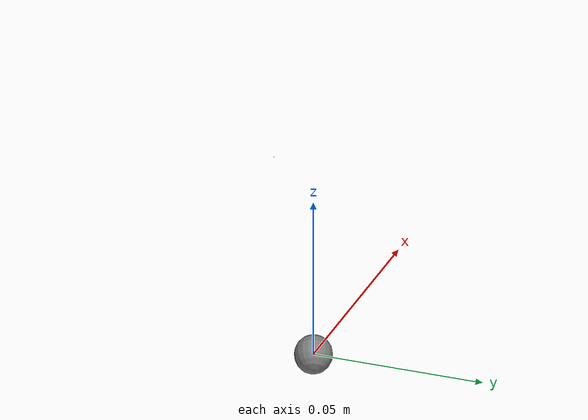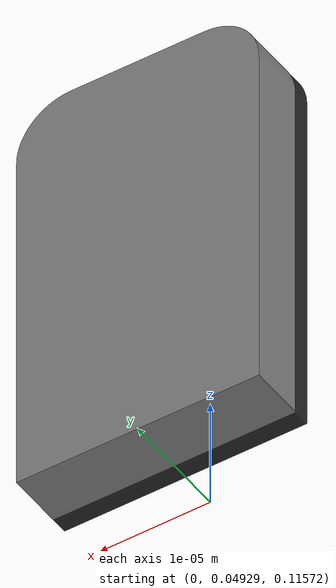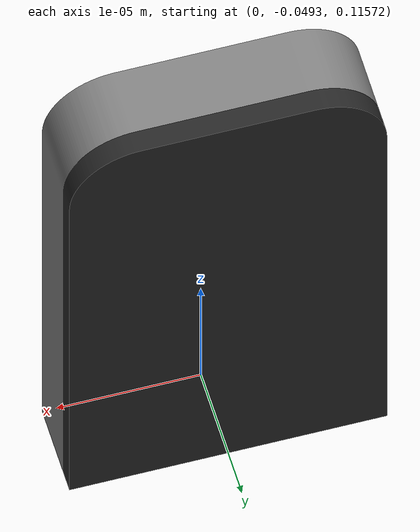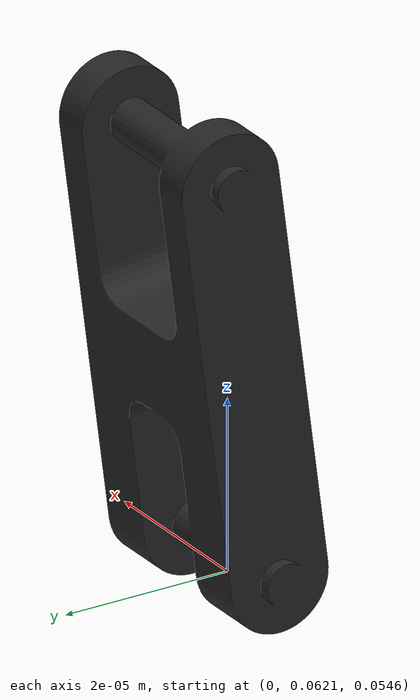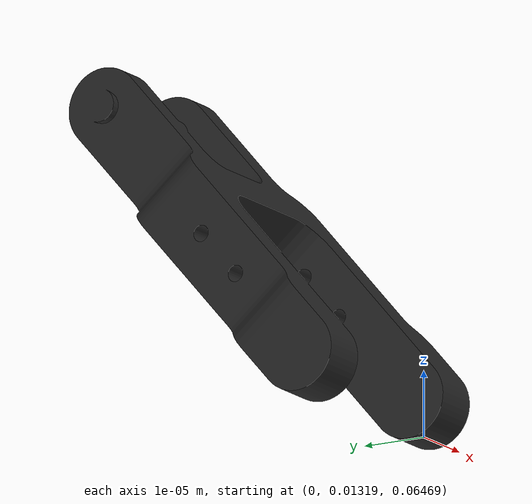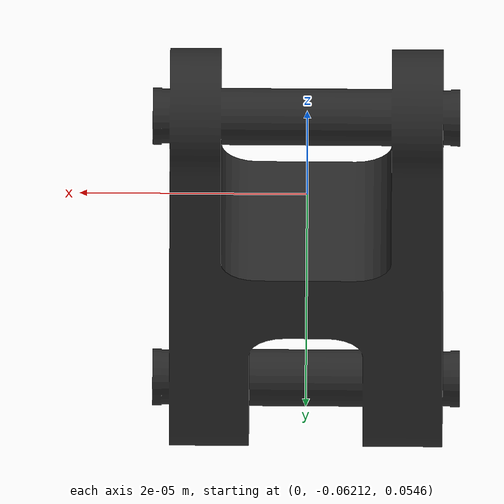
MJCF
<mujoco model="panda">
  <compiler angle="radian" autolimits="true"/>

  <default>
    <default class="panda">
      <joint armature="0.1" damping="1" axis="0 0 1" range="-2.8973 2.8973"/>
      <default class="panda/visual">
        <geom type="mesh" contype="0" conaffinity="0" group="2"/>
      </default>
      <default class="panda/collision">
        <geom type="mesh" group="3"/>
      </default>
      <site size="0.001" rgba="0.5 0.5 0.5 0.3" group="4"/>
    </default>
    <default class="2f85">
      <mesh scale="0.001 0.001 0.001"/>
      <general biastype="affine"/>
      <site type="sphere" rgba="0.9 0.9 0.9 1" size="0.005" group="4"/>
      <joint axis="1 0 0"/>
      <default class="driver">
        <joint range="0 0.8" armature="0.005" damping="0.1" solimplimit="0.95 0.99 0.001" solreflimit="0.005 1"/>
      </default>
      <default class="follower">
        <joint range="-0.872664 0.872664" pos="0 -0.018 0.0065" solimplimit="0.95 0.99 0.001" solreflimit="0.005 1"/>
      </default>
      <default class="spring_link">
        <joint range="-0.29670597283 0.8" stiffness="0.05" springref="2.62" damping="0.00125"/>
      </default>
      <default class="coupler">
        <joint range="-1.57 0" solimplimit="0.95 0.99 0.001" solreflimit="0.005 1"/>
      </default>
      <default class="2f85/visual">
        <geom type="mesh" contype="0" conaffinity="0" group="2"/>
      </default>
      <default class="2f85/collision">
        <geom type="mesh" group="3"/>
        <default class="pad_box1">
          <geom mass="0" type="box" pos="0 -0.0026 0.028125" size="0.011 0.004 0.009375" friction="0.7"
            solimp="0.95 0.99 0.001" solref="0.004 1" priority="1" rgba="0.55 0.55 0.55 1"/>
        </default>
        <default class="pad_box2">
          <geom mass="0" type="box" pos="0 -0.0026 0.009375" size="0.011 0.004 0.009375" friction="0.6"
            solimp="0.95 0.99 0.001" solref="0.004 1" priority="1" rgba="0.45 0.45 0.45 1"/>
        </default>
      </default>
    </default>
  </default>

  <asset>
    <material name="white" rgba="1 1 1 1"/>
    <material name="off_white" rgba="0.901961 0.921569 0.929412 1"/>
    <material name="dark_grey" rgba="0.25 0.25 0.25 1"/>
    <material name="green" rgba="0 1 0 1"/>
    <material name="light_blue" rgba="0.039216 0.541176 0.780392 1"/>
    <material name="metal" rgba="0.58 0.58 0.58 1"/>
    <material name="silicone" rgba="0.1882 0.1882 0.1882 1"/>
    <material name="gray" rgba="0.4627 0.4627 0.4627 1"/>
    <material name="black" rgba="0.149 0.149 0.149 1"/>

    <mesh class="2f85" file="robotiq_2f85/assets/base_mount.stl"/>
    <mesh class="2f85" file="robotiq_2f85/assets/base.stl"/>
    <mesh class="2f85" file="robotiq_2f85/assets/driver.stl"/>
    <mesh class="2f85" file="robotiq_2f85/assets/coupler.stl"/>
    <mesh class="2f85" file="robotiq_2f85/assets/follower.stl"/>
    <mesh class="2f85" file="robotiq_2f85/assets/pad.stl"/>
    <mesh class="2f85" file="robotiq_2f85/assets/silicone_pad.stl"/>
    <mesh class="2f85" file="robotiq_2f85/assets/spring_link.stl"/>
  </asset>

  <worldbody>
    <body name="attachment" pos="0 0 0.0">
      <camera name="handcam_depth" pos="0.066 0.094 0.096" fovy="42.5" xyaxes="-0.828 0.560 0.000 0.240 0.355 0.904"/>
      <camera name="handcam_rgb" pos="-0.059 -0.088 0.080" fovy="42.5" xyaxes="0.759 -0.651 -0.000 -0.361 -0.420 0.833"/>
      <site name="attachment_site" quat="0 0 0 1"/>
      <body name="base_mount" quat="-1 0 0 1" childclass="2f85">
        <geom class="2f85/visual" mesh="base_mount" material="black"/>
        <geom class="2f85/collision" mesh="base_mount"/>
        <body name="base" pos="0 0 0.0038" quat="1 0 0 -1">
          <inertial mass="0.777441" pos="0 -2.70394e-05 0.0354675" quat="1 -0.00152849 0 0"
            diaginertia="0.000260285 0.000225381 0.000152708"/>
          <geom class="2f85/visual" mesh="base" material="black"/>
          <geom class="2f85/collision" mesh="base"/>
          <site name="pinch" pos="0 0 0.145"/>
          <body name="right_driver" pos="0 0.0306011 0.054904">
            <inertial mass="0.00899563" pos="2.96931e-12 0.0177547 0.00107314"
              quat="0.681301 0.732003 0 0" diaginertia="1.72352e-06 1.60906e-06 3.22006e-07"/>
            <joint name="right_driver_joint" class="driver"/>
            <geom class="2f85/visual" mesh="driver" material="gray"/>
            <geom class="2f85/collision" mesh="driver"/>
            <body name="right_coupler" pos="0 0.0315 -0.0041">
              <inertial mass="0.0140974" pos="0 0.00301209 0.0232175"
                quat="0.705636 -0.0455904 0.0455904 0.705636"
                diaginertia="4.16206e-06 3.52216e-06 8.88131e-07"/>
              <joint name="right_coupler_joint" class="coupler"/>
              <geom class="2f85/visual" mesh="coupler" material="black"/>
              <geom class="2f85/collision" mesh="coupler"/>
            </body>
          </body>
          <body name="right_spring_link" pos="0 0.0132 0.0609">
            <inertial mass="0.0221642" pos="-8.65005e-09 0.0181624 0.0212658"
              quat="0.663403 -0.244737 0.244737 0.663403"
              diaginertia="8.96853e-06 6.71733e-06 2.63931e-06"/>
            <joint name="right_spring_link_joint" class="spring_link"/>
            <geom class="2f85/visual" mesh="spring_link" material="black"/>
            <geom class="2f85/collision" mesh="spring_link"/>
            <body name="right_follower" pos="0 0.055 0.0375">
              <inertial mass="0.0125222" pos="0 -0.011046 0.0124786" quat="1 0.1664 0 0"
                diaginertia="2.67415e-06 2.4559e-06 6.02031e-07"/>
              <joint name="right_follower_joint" class="follower"/>
              <geom class="2f85/visual" mesh="follower" material="black"/>
              <geom class="2f85/collision" mesh="follower"/>
              <body name="right_pad" pos="0 -0.0189 0.01352">
                <geom class="pad_box1" name="right_pad1"/>
                <geom class="pad_box2" name="right_pad2"/>
                <inertial mass="0.0035" pos="0 -0.0025 0.0185" quat="0.707107 0 0 0.707107"
                  diaginertia="4.73958e-07 3.64583e-07 1.23958e-07"/>
                <geom class="2f85/visual" mesh="pad"/>
                <body name="right_silicone_pad">
                  <geom class="2f85/visual" mesh="silicone_pad" material="black"/>
                </body>
              </body>
            </body>
          </body>
          <body name="left_driver" pos="0 -0.0306011 0.054904" quat="0 0 0 1">
            <inertial mass="0.00899563" pos="0 0.0177547 0.00107314" quat="0.681301 0.732003 0 0"
              diaginertia="1.72352e-06 1.60906e-06 3.22006e-07"/>
            <joint name="left_driver_joint" class="driver"/>
            <geom class="2f85/visual" mesh="driver" material="gray"/>
            <geom class="2f85/collision" mesh="driver"/>
            <body name="left_coupler" pos="0 0.0315 -0.0041">
              <inertial mass="0.0140974" pos="0 0.00301209 0.0232175"
                quat="0.705636 -0.0455904 0.0455904 0.705636"
                diaginertia="4.16206e-06 3.52216e-06 8.88131e-07"/>
              <joint name="left_coupler_joint" class="coupler"/>
              <geom class="2f85/visual" mesh="coupler" material="black"/>
              <geom class="2f85/collision" mesh="coupler"/>
            </body>
          </body>
          <body name="left_spring_link" pos="0 -0.0132 0.0609" quat="0 0 0 1">
            <inertial mass="0.0221642" pos="-8.65005e-09 0.0181624 0.0212658"
              quat="0.663403 -0.244737 0.244737 0.663403"
              diaginertia="8.96853e-06 6.71733e-06 2.63931e-06"/>
            <joint name="left_spring_link_joint" class="spring_link"/>
            <geom class="2f85/visual" mesh="spring_link" material="black"/>
            <geom class="2f85/collision" mesh="spring_link"/>
            <body name="left_follower" pos="0 0.055 0.0375">
              <inertial mass="0.0125222" pos="0 -0.011046 0.0124786" quat="1 0.1664 0 0"
                diaginertia="2.67415e-06 2.4559e-06 6.02031e-07"/>
              <joint name="left_follower_joint" class="follower"/>
              <geom class="2f85/visual" mesh="follower" material="black"/>
              <geom class="2f85/collision" mesh="follower"/>
              <body name="left_pad" pos="0 -0.0189 0.01352">
                <geom class="pad_box1" name="left_pad1"/>
                <geom class="pad_box2" name="left_pad2"/>
                <inertial mass="0.0035" pos="0 -0.0025 0.0185" quat="1 0 0 1"
                  diaginertia="4.73958e-07 3.64583e-07 1.23958e-07"/>
                <geom class="2f85/visual" mesh="pad"/>
                <body name="left_silicone_pad">
                  <geom class="2f85/visual" mesh="silicone_pad" material="black"/>
                </body>
              </body>
            </body>
          </body>
        </body>
      </body>
    </body>
  </worldbody>

  <contact>
    <exclude body1="base" body2="left_driver"/>
    <exclude body1="base" body2="right_driver"/>
    <exclude body1="base" body2="left_spring_link"/>
    <exclude body1="base" body2="right_spring_link"/>
    <exclude body1="right_coupler" body2="right_follower"/>
    <exclude body1="left_coupler" body2="left_follower"/>
  </contact>

  <tendon>
    <fixed name="split">
      <joint joint="right_driver_joint" coef="0.5"/>
      <joint joint="left_driver_joint" coef="0.5"/>
    </fixed>
  </tendon>

  <equality>
    <connect anchor="0 0 0" body1="right_follower" body2="right_coupler" solimp="0.95 0.99 0.001" solref="0.005 1"/>
    <connect anchor="0 0 0" body1="left_follower" body2="left_coupler" solimp="0.95 0.99 0.001" solref="0.005 1"/>
    <joint joint1="right_driver_joint" joint2="left_driver_joint" polycoef="0 1 0 0 0" solimp="0.95 0.99 0.001"
      solref="0.005 1"/>
  </equality>

  <actuator>
    <general class="2f85" name="fingers_actuator" tendon="split" forcerange="-0.9 0.9" ctrlrange="0 255"
      gainprm="0.3137255 0 0" biasprm="0 -100 -10"/>
  </actuator>

  <sensor>
    <force name="panda/wrist_force" site="attachment_site"/>

    <framepos name="2f85/pinch_pos" objtype="site" objname="pinch"/>
    <framequat name="2f85/pinch_quat" objtype="site" objname="pinch"/>
    <framelinvel name="2f85/pinch_vel" objtype="site" objname="pinch"/>
    <frameangvel name="2f85/pinch_angvel" objtype="site" objname="pinch"/>
  </sensor>
</mujoco>
